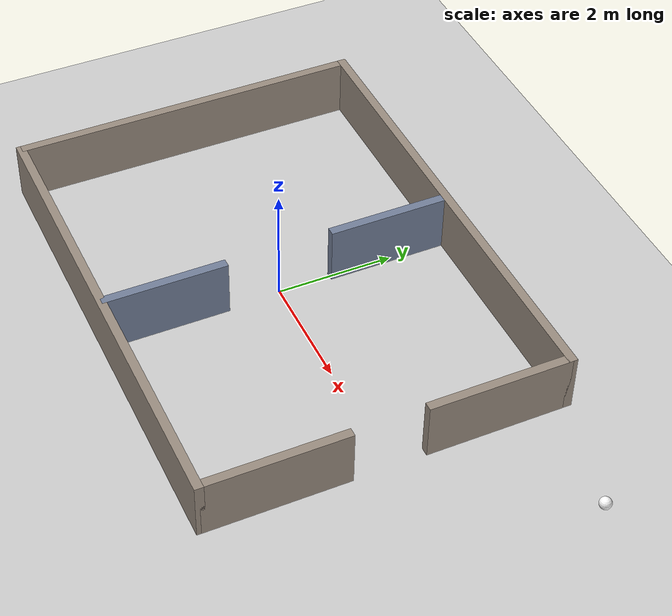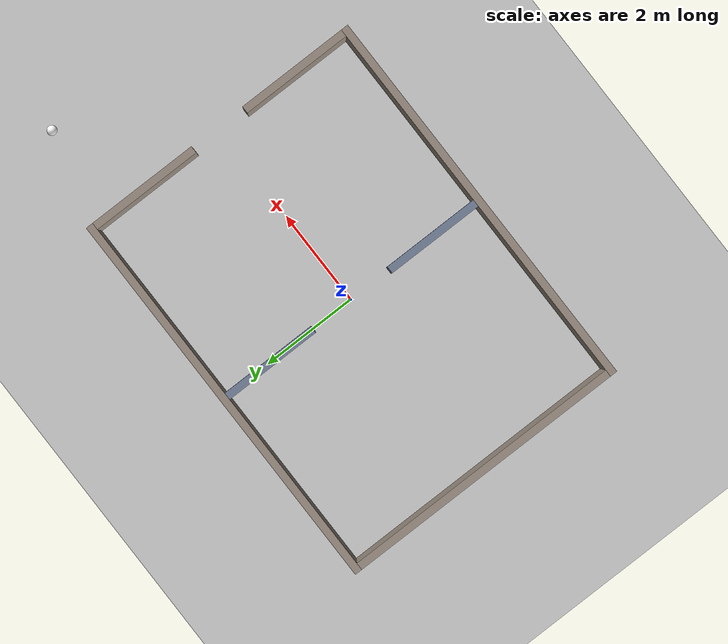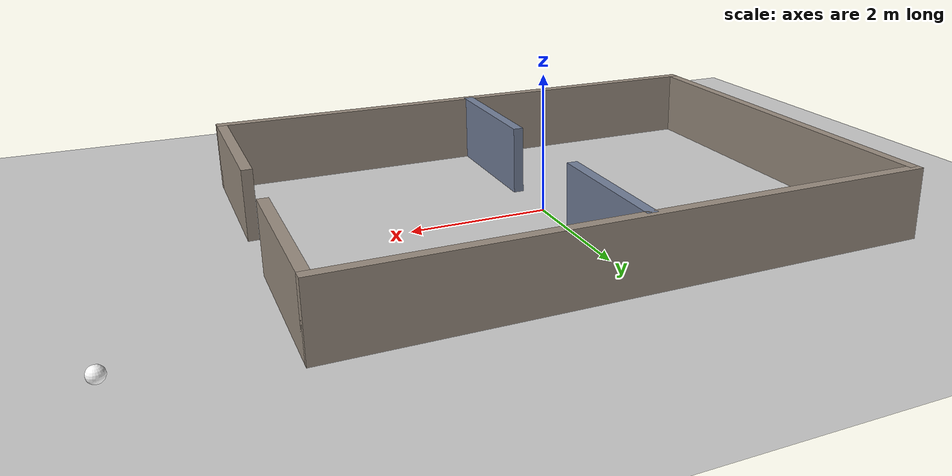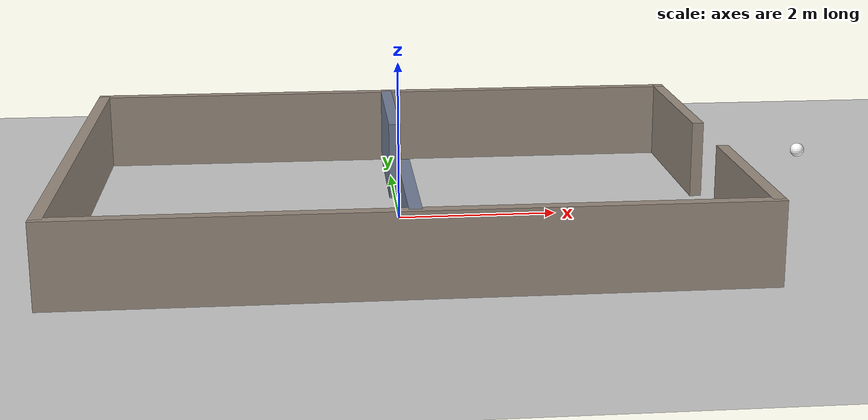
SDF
<?xml version="1.0" ?>
<sdf version="1.6">
  <world name="default">

    <include>
      <uri>model://ground_plane</uri>
    </include>

    <!-- Light source -->
    <include>
      <uri>model://sun</uri>
    </include>

    <scene>
      <ambient>0.4 0.4 0.4 1</ambient>
      <background>0.7 0.7 0.7 1</background>
      <shadows>1</shadows>
    </scene>

    <model name="building">
      <pose>0 0 0 0 0 0</pose>
      <static>1</static>

      <!-- North wall -->
      <link name="Wall_0">
        <pose>0 3 0 0 0 0</pose>
        <collision name="Wall_0_Collision">
          <geometry><box><size>8.15 0.15 1</size></box></geometry>
          <pose>0 0 0.5 0 0 0</pose>
        </collision>
        <visual name="Wall_0_Visual">
          <pose>0 0 0.5 0 0 0</pose>
          <geometry><box><size>8.15 0.15 1</size></box></geometry>
          <material>
            <ambient>0.45 0.4 0.35 1</ambient>
            <diffuse>0.6 0.55 0.5 1</diffuse>
            <specular>0 0 0 1</specular>
          </material>
        </visual>
      </link>

      <!-- South wall -->
      <link name="Wall_1">
        <pose>0 -3 0 0 0 0</pose>
        <collision name="Wall_1_Collision">
          <geometry><box><size>8.15 0.15 1</size></box></geometry>
          <pose>0 0 0.5 0 0 0</pose>
        </collision>
        <visual name="Wall_1_Visual">
          <pose>0 0 0.5 0 0 0</pose>
          <geometry><box><size>8.15 0.15 1</size></box></geometry>
          <material>
            <ambient>0.45 0.4 0.35 1</ambient>
            <diffuse>0.6 0.55 0.5 1</diffuse>
            <specular>0 0 0 1</specular>
          </material>
        </visual>
      </link>

      <!-- East wall, north of the 1.2 m entrance -->
      <link name="Wall_2">
        <pose>4 1.8 0 0 0 0</pose>
        <collision name="Wall_2_Collision">
          <geometry><box><size>0.15 2.4 1</size></box></geometry>
          <pose>0 0 0.5 0 0 0</pose>
        </collision>
        <visual name="Wall_2_Visual">
          <pose>0 0 0.5 0 0 0</pose>
          <geometry><box><size>0.15 2.4 1</size></box></geometry>
          <material>
            <ambient>0.45 0.4 0.35 1</ambient>
            <diffuse>0.6 0.55 0.5 1</diffuse>
            <specular>0 0 0 1</specular>
          </material>
        </visual>
      </link>

      <!-- East wall, south of the entrance -->
      <link name="Wall_3">
        <pose>4 -1.8 0 0 0 0</pose>
        <collision name="Wall_3_Collision">
          <geometry><box><size>0.15 2.4 1</size></box></geometry>
          <pose>0 0 0.5 0 0 0</pose>
        </collision>
        <visual name="Wall_3_Visual">
          <pose>0 0 0.5 0 0 0</pose>
          <geometry><box><size>0.15 2.4 1</size></box></geometry>
          <material>
            <ambient>0.45 0.4 0.35 1</ambient>
            <diffuse>0.6 0.55 0.5 1</diffuse>
            <specular>0 0 0 1</specular>
          </material>
        </visual>
      </link>

      <!-- West wall -->
      <link name="Wall_4">
        <pose>-4 0 0 0 0 0</pose>
        <collision name="Wall_4_Collision">
          <geometry><box><size>0.15 6 1</size></box></geometry>
          <pose>0 0 0.5 0 0 0</pose>
        </collision>
        <visual name="Wall_4_Visual">
          <pose>0 0 0.5 0 0 0</pose>
          <geometry><box><size>0.15 6 1</size></box></geometry>
          <material>
            <ambient>0.45 0.4 0.35 1</ambient>
            <diffuse>0.6 0.55 0.5 1</diffuse>
            <specular>0 0 0 1</specular>
          </material>
        </visual>
      </link>

      <!-- Interior partition, north of the 1.8 m doorway -->
      <link name="Wall_5">
        <pose>0 1.95 0 0 0 0</pose>
        <collision name="Wall_5_Collision">
          <geometry><box><size>0.15 2.1 1</size></box></geometry>
          <pose>0 0 0.5 0 0 0</pose>
        </collision>
        <visual name="Wall_5_Visual">
          <pose>0 0 0.5 0 0 0</pose>
          <geometry><box><size>0.15 2.1 1</size></box></geometry>
          <material>
            <ambient>0.35 0.4 0.45 1</ambient>
            <diffuse>0.45 0.5 0.6 1</diffuse>
            <specular>0 0 0 1</specular>
          </material>
        </visual>
      </link>

      <!-- Interior partition, south of the doorway -->
      <link name="Wall_6">
        <pose>0 -1.95 0 0 0 0</pose>
        <collision name="Wall_6_Collision">
          <geometry><box><size>0.15 2.1 1</size></box></geometry>
          <pose>0 0 0.5 0 0 0</pose>
        </collision>
        <visual name="Wall_6_Visual">
          <pose>0 0 0.5 0 0 0</pose>
          <geometry><box><size>0.15 2.1 1</size></box></geometry>
          <material>
            <ambient>0.35 0.4 0.45 1</ambient>
            <diffuse>0.45 0.5 0.6 1</diffuse>
            <specular>0 0 0 1</specular>
          </material>
        </visual>
      </link>
    </model>

    <!-- The Ball: radius 0.1, white in ambient/diffuse/specular/emissive as in the lesson -->
    <model name="my_ball">
      <pose>6 2.5 0.1 0 0 0</pose>
      <link name="link">
        <inertial>
          <mass>0.1</mass>
          <inertia>
            <ixx>0.0004</ixx><ixy>0</ixy><ixz>0</ixz>
            <iyy>0.0004</iyy><iyz>0</iyz>
            <izz>0.0004</izz>
          </inertia>
        </inertial>
        <collision name="collision">
          <geometry><sphere><radius>0.1</radius></sphere></geometry>
        </collision>
        <visual name="visual">
          <geometry><sphere><radius>0.1</radius></sphere></geometry>
          <material>
            <ambient>1 1 1 1</ambient>
            <diffuse>1 1 1 1</diffuse>
            <specular>1 1 1 1</specular>
            <emissive>1 1 1 1</emissive>
          </material>
        </visual>
      </link>
    </model>

    <!-- World camera -->
    <gui fullscreen='0'>
      <camera name='world_camera'>
        <pose>-1.5 -9 8 0 0.75 1.4</pose>
        <view_controller>orbit</view_controller>
      </camera>
    </gui>

  </world>
</sdf>
